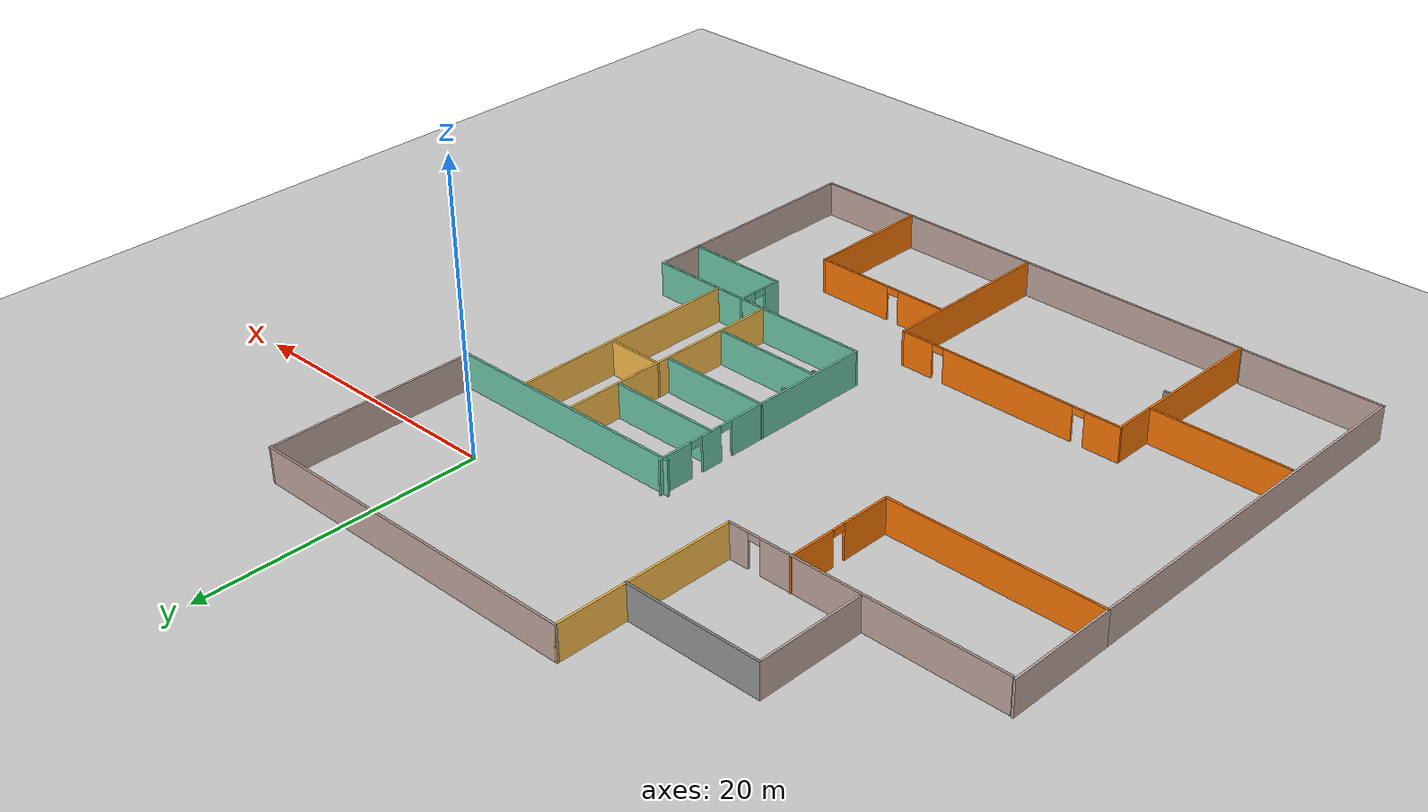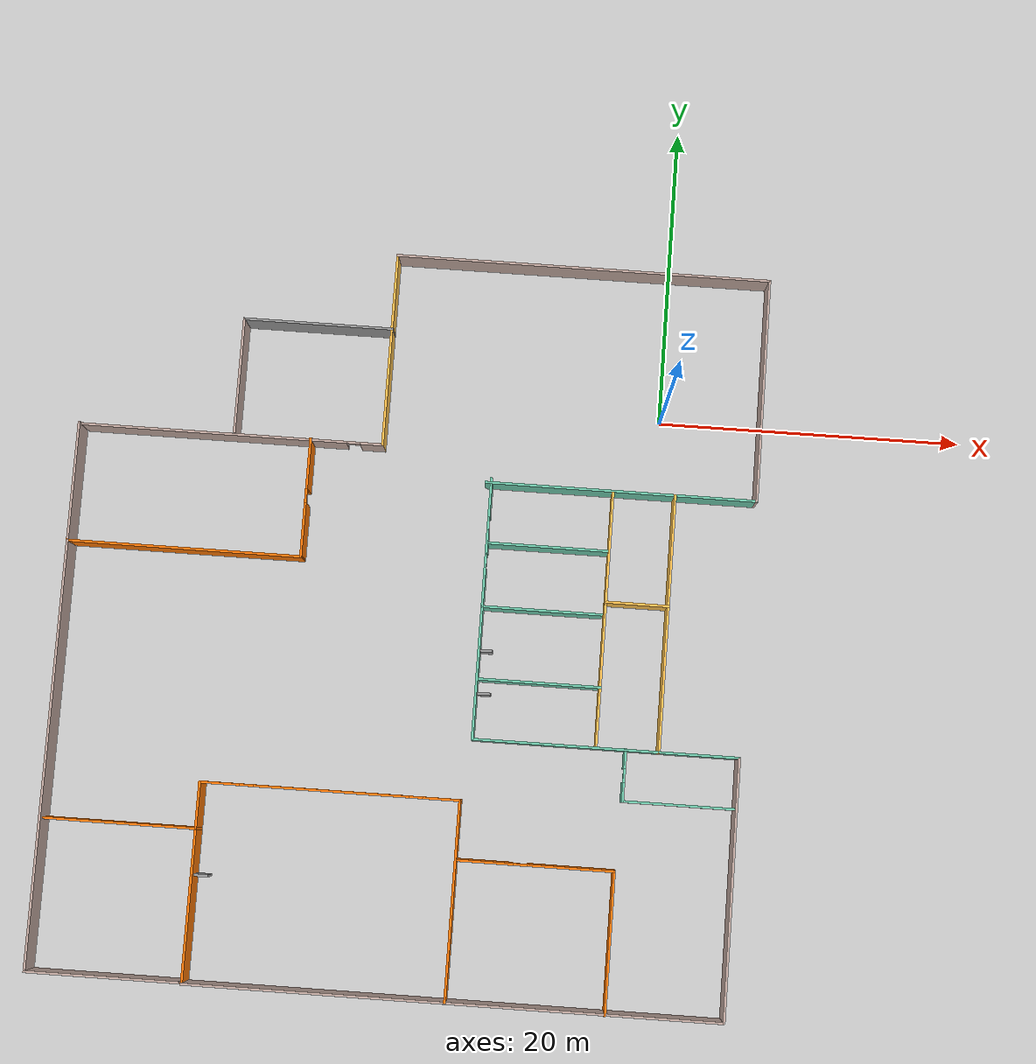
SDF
<sdf version="1.6">
 <world name="default">
  <model name="ground_plane">
   <static>1</static>
   <link name="link">
    <collision name="collision">
     <geometry><plane><normal>0 0 1</normal><size>100 100</size></plane></geometry>
     <surface>
      <contact><collide_bitmask>65535</collide_bitmask></contact>
      <friction><ode><mu>100</mu><mu2>50</mu2></ode></friction>
     </surface>
    </collision>
    <visual name="visual">
     <cast_shadows>0</cast_shadows>
     <geometry><plane><normal>0 0 1</normal><size>100 100</size></plane></geometry>
     <material>
      <script><uri>file://media/materials/scripts/gazebo.material</uri><name>Gazebo/Grey</name></script>
     </material>
    </visual>
   </link>
  </model>
  <model name="newest">
   <pose>-15.9063 -14.6131 0 0 -0 0</pose>
   <link name="Door_4">
    <collision name="Door_4_Collision">
     <geometry><box><size>0.9 0.17 2</size></box></geometry>
     <pose>0 0 1 0 -0 0</pose>
    </collision>
    <visual name="Door_4_Visual">
     <pose>0 0 1 0 -0 0</pose>
     <geometry><box><size>0.9 0.17 2</size></box></geometry>
     <material>
      <script><uri>file://media/materials/scripts/gazebo.material</uri><name>Gazebo/Grey</name></script>
     </material>
    </visual>
    <pose>5.40167 -1.58767 0 0 -0 0</pose>
   </link>
   <link name="Door_5">
    <collision name="Door_5_Collision">
     <geometry><box><size>0.9 0.17 2</size></box></geometry>
     <pose>0 0 1 0 -0 0</pose>
    </collision>
    <visual name="Door_5_Visual">
     <pose>0 0 1 0 -0 0</pose>
     <geometry><box><size>0.9 0.17 2</size></box></geometry>
     <material>
      <script><uri>file://media/materials/scripts/gazebo.material</uri><name>Gazebo/Grey</name></script>
     </material>
    </visual>
    <pose>5.49524 -4.39496 0 0 -0 0</pose>
   </link>
   <link name="Door_7">
    <collision name="Door_7_Collision">
     <geometry><box><size>0.9 0.17 2</size></box></geometry>
     <pose>0 0 1 0 -0 0</pose>
    </collision>
    <visual name="Door_7_Visual">
     <pose>0 0 1 0 -0 0</pose>
     <geometry><box><size>0.9 0.17 2</size></box></geometry>
     <material>
      <script><uri>file://media/materials/scripts/gazebo.material</uri><name>Gazebo/Grey</name></script>
     </material>
    </visual>
    <pose>-11.8428 -17.3645 0 0 -0 0</pose>
   </link>
   <link name="Wall_1">
    <collision name="Wall_1_Collision">
     <geometry><box><size>25 0.15 2.5</size></box></geometry>
     <pose>0 0 1.25 0 -0 0</pose>
    </collision>
    <visual name="Wall_1_Visual">
     <pose>0 0 1.25 0 -0 0</pose>
     <geometry><box><size>25 0.15 2.5</size></box></geometry>
     <material>
      <script><uri>file://media/materials/scripts/gazebo.material</uri><name>Gazebo/Grey</name></script>
      <ambient>0.760784 0.662745 0.627451 1</ambient>
     </material>
     <meta><layer>0</layer></meta>
    </visual>
    <pose>10.0497 24.3037 0 0 -0 0</pose>
   </link>
   <link name="Wall_11">
    <collision name="Wall_11_Collision">
     <geometry><box><size>10 0.15 2.5</size></box></geometry>
     <pose>0 0 1.25 0 -0 0</pose>
    </collision>
    <visual name="Wall_11_Visual">
     <pose>0 0 1.25 0 -0 0</pose>
     <geometry><box><size>10 0.15 2.5</size></box></geometry>
     <material>
      <script><uri>file://media/materials/scripts/gazebo.material</uri><name>Gazebo/Grey</name></script>
      <ambient>1 1 1 1</ambient>
     </material>
     <meta><layer>0</layer></meta>
    </visual>
    <pose>-7.27616 19.2697 0 0 -0 3.14159</pose>
   </link>
   <link name="Wall_13">
    <collision name="Wall_13_Collision">
     <geometry><box><size>7.75 0.15 2.5</size></box></geometry>
     <pose>0 0 1.25 0 -0 0</pose>
    </collision>
    <visual name="Wall_13_Visual">
     <pose>0 0 1.25 0 -0 0</pose>
     <geometry><box><size>7.75 0.15 2.5</size></box></geometry>
     <material>
      <script><uri>file://media/materials/scripts/gazebo.material</uri><name>Gazebo/Grey</name></script>
      <ambient>0.760784 0.662745 0.627451 1</ambient>
     </material>
     <meta><layer>0</layer></meta>
    </visual>
    <pose>-12.2012 15.4697 0 0 0 -1.5708</pose>
   </link>
   <link name="Wall_15">
    <collision name="Wall_15_Collision">
     <geometry><box><size>8 0.15 2.5</size></box></geometry>
     <pose>0 0 1.25 0 -0 0</pose>
    </collision>
    <visual name="Wall_15_Visual">
     <pose>0 0 1.25 0 -0 0</pose>
     <geometry><box><size>8 0.15 2.5</size></box></geometry>
     <material>
      <script><uri>file://media/materials/scripts/gazebo.material</uri><name>Gazebo/Grey</name></script>
      <ambient>0.760784 0.662745 0.627451 1</ambient>
     </material>
     <meta><layer>0</layer></meta>
    </visual>
    <pose>-22.4747 7.59655 0 0 0 -1.5708</pose>
   </link>
   <link name="Wall_17">
    <collision name="Wall_17_Collision">
     <geometry><box><size>15.5 0.15 2.5</size></box></geometry>
     <pose>0 0 1.25 0 -0 0</pose>
    </collision>
    <visual name="Wall_17_Visual">
     <pose>0 0 1.25 0 -0 0</pose>
     <geometry><box><size>15.5 0.15 2.5</size></box></geometry>
     <material>
      <script><uri>file://media/materials/scripts/gazebo.material</uri><name>Gazebo/Grey</name></script>
      <ambient>0.996078 0.47451 0.0196078 1</ambient>
     </material>
     <meta><layer>0</layer></meta>
    </visual>
    <pose>-14.7997 3.67155 0 0 -0 0</pose>
   </link>
   <link name="Wall_18">
    <pose>-7.12473 7.59655 0 0 -0 1.5708</pose>
    <visual name="Wall_18_Visual_0">
     <pose>-2.16447 0 1.25 0 -0 0</pose>
     <geometry><box><size>3.67106 0.15 2.5</size></box></geometry>
     <material>
      <script><uri>file://media/materials/scripts/gazebo.material</uri><name>Gazebo/Grey</name></script>
      <ambient>0.996078 0.47451 0.0196078 1</ambient>
     </material>
     <meta><layer>0</layer></meta>
    </visual>
    <collision name="Wall_18_Collision_0">
     <geometry><box><size>3.67106 0.15 2.5</size></box></geometry>
     <pose>-2.16447 0 1.25 0 -0 0</pose>
    </collision>
    <visual name="Wall_18_Visual_1">
     <pose>2.28553 0 1.25 0 -0 0</pose>
     <geometry><box><size>3.42894 0.15 2.5</size></box></geometry>
     <material>
      <script><uri>file://media/materials/scripts/gazebo.material</uri><name>Gazebo/Grey</name></script>
      <ambient>0.996078 0.47451 0.0196078 1</ambient>
     </material>
     <meta><layer>0</layer></meta>
    </visual>
    <collision name="Wall_18_Collision_1">
     <geometry><box><size>3.42894 0.15 2.5</size></box></geometry>
     <pose>2.28553 0 1.25 0 -0 0</pose>
    </collision>
    <visual name="Wall_18_Visual_2">
     <pose>0.121058 0 2.25 0 -0 0</pose>
     <geometry><box><size>0.9 0.15 0.5</size></box></geometry>
     <material>
      <script><uri>file://media/materials/scripts/gazebo.material</uri><name>Gazebo/Grey</name></script>
      <ambient>0.996078 0.47451 0.0196078 1</ambient>
     </material>
     <meta><layer>0</layer></meta>
    </visual>
    <collision name="Wall_18_Collision_2">
     <geometry><box><size>0.9 0.15 0.5</size></box></geometry>
     <pose>0.121058 0 2.25 0 -0 0</pose>
    </collision>
   </link>
   <link name="Wall_20">
    <collision name="Wall_20_Collision">
     <geometry><box><size>28 0.15 2.5</size></box></geometry>
     <pose>0 0 1.25 0 -0 0</pose>
    </collision>
    <visual name="Wall_20_Visual">
     <pose>0 0 1.25 0 -0 0</pose>
     <geometry><box><size>28 0.15 2.5</size></box></geometry>
     <material>
      <script><uri>file://media/materials/scripts/gazebo.material</uri><name>Gazebo/Grey</name></script>
      <ambient>0.760784 0.662745 0.627451 1</ambient>
     </material>
     <meta><layer>0</layer></meta>
    </visual>
    <pose>-22.4747 -10.2535 0 0 0 -1.5708</pose>
   </link>
   <link name="Wall_22">
    <collision name="Wall_22_Collision">
     <geometry><box><size>10 0.15 2.5</size></box></geometry>
     <pose>0 0 1.25 0 -0 0</pose>
    </collision>
    <visual name="Wall_22_Visual">
     <pose>0 0 1.25 0 -0 0</pose>
     <geometry><box><size>10 0.15 2.5</size></box></geometry>
     <material>
      <script><uri>file://media/materials/scripts/gazebo.material</uri><name>Gazebo/Grey</name></script>
      <ambient>0.760784 0.662745 0.627451 1</ambient>
     </material>
     <meta><layer>0</layer></meta>
    </visual>
    <pose>-17.5497 -24.1785 0 0 -0 0</pose>
   </link>
   <link name="Wall_24">
    <collision name="Wall_24_Collision">
     <geometry><box><size>10 0.15 2.5</size></box></geometry>
     <pose>0 0 1.25 0 -0 0</pose>
    </collision>
    <visual name="Wall_24_Visual">
     <pose>0 0 1.25 0 -0 0</pose>
     <geometry><box><size>10 0.15 2.5</size></box></geometry>
     <material>
      <script><uri>file://media/materials/scripts/gazebo.material</uri><name>Gazebo/Grey</name></script>
      <ambient>0.996078 0.47451 0.0196078 1</ambient>
     </material>
     <meta><layer>0</layer></meta>
    </visual>
    <pose>-12.3763 -19.3183 0 0 -0 1.5708</pose>
   </link>
   <link name="Wall_26">
    <collision name="Wall_26_Collision">
     <geometry><box><size>10 0.15 2.5</size></box></geometry>
     <pose>0 0 1.25 0 -0 0</pose>
    </collision>
    <visual name="Wall_26_Visual">
     <pose>0 0 1.25 0 -0 0</pose>
     <geometry><box><size>10 0.15 2.5</size></box></geometry>
     <material>
      <script><uri>file://media/materials/scripts/gazebo.material</uri><name>Gazebo/Grey</name></script>
      <ambient>0.996078 0.47451 0.0196078 1</ambient>
     </material>
     <meta><layer>0</layer></meta>
    </visual>
    <pose>-17.3013 -14.3933 0 0 -0 3.14159</pose>
   </link>
   <link name="Wall_28">
    <collision name="Wall_28_Collision">
     <geometry><box><size>17 0.15 2.5</size></box></geometry>
     <pose>0 0 1.25 0 -0 0</pose>
    </collision>
    <visual name="Wall_28_Visual">
     <pose>0 0 1.25 0 -0 0</pose>
     <geometry><box><size>17 0.15 2.5</size></box></geometry>
     <material>
      <script><uri>file://media/materials/scripts/gazebo.material</uri><name>Gazebo/Grey</name></script>
      <ambient>0.760784 0.662745 0.627451 1</ambient>
     </material>
     <meta><layer>0</layer></meta>
    </visual>
    <pose>-3.95132 -24.2434 0 0 -0 0</pose>
   </link>
   <link name="Wall_3">
    <collision name="Wall_3_Collision">
     <geometry><box><size>15 0.15 2.5</size></box></geometry>
     <pose>0 0 1.25 0 -0 0</pose>
    </collision>
    <visual name="Wall_3_Visual">
     <pose>0 0 1.25 0 -0 0</pose>
     <geometry><box><size>15 0.15 2.5</size></box></geometry>
     <material>
      <script><uri>file://media/materials/scripts/gazebo.material</uri><name>Gazebo/Grey</name></script>
      <ambient>0.760784 0.662745 0.627451 1</ambient>
     </material>
     <meta><layer>0</layer></meta>
    </visual>
    <pose>22.4745 16.8789 0 0 0 -1.57082</pose>
   </link>
   <link name="Wall_30">
    <collision name="Wall_30_Collision">
     <geometry><box><size>13 0.15 2.5</size></box></geometry>
     <pose>0 0 1.25 0 -0 0</pose>
    </collision>
    <visual name="Wall_30_Visual">
     <pose>0 0 1.25 0 -0 0</pose>
     <geometry><box><size>13 0.15 2.5</size></box></geometry>
     <material>
      <script><uri>file://media/materials/scripts/gazebo.material</uri><name>Gazebo/Grey</name></script>
      <ambient>0.996078 0.47451 0.0196078 1</ambient>
     </material>
     <meta><layer>0</layer></meta>
    </visual>
    <pose>4.47368 -17.8183 0 0 -0 1.5708</pose>
   </link>
   <link name="Wall_31">
    <pose>-3.95132 -11.3933 0 0 -0 3.14159</pose>
    <visual name="Wall_31_Visual_0">
     <pose>-7.25826 0 1.25 0 -0 0</pose>
     <geometry><box><size>2.48348 0.15 2.5</size></box></geometry>
     <material>
      <script><uri>file://media/materials/scripts/gazebo.material</uri><name>Gazebo/Grey</name></script>
      <ambient>0.996078 0.47451 0.0196078 1</ambient>
     </material>
     <meta><layer>0</layer></meta>
    </visual>
    <collision name="Wall_31_Collision_0">
     <geometry><box><size>2.48348 0.15 2.5</size></box></geometry>
     <pose>-7.25826 0 1.25 0 -0 0</pose>
    </collision>
    <visual name="Wall_31_Visual_1">
     <pose>-0.083725 0 1.25 0 -0 0</pose>
     <geometry><box><size>10.0656 0.15 2.5</size></box></geometry>
     <material>
      <script><uri>file://media/materials/scripts/gazebo.material</uri><name>Gazebo/Grey</name></script>
      <ambient>0.996078 0.47451 0.0196078 1</ambient>
     </material>
     <meta><layer>0</layer></meta>
    </visual>
    <collision name="Wall_31_Collision_1">
     <geometry><box><size>10.0656 0.15 2.5</size></box></geometry>
     <pose>-0.083725 0 1.25 0 -0 0</pose>
    </collision>
    <visual name="Wall_31_Visual_2">
     <pose>7.17453 0 1.25 0 -0 0</pose>
     <geometry><box><size>2.65094 0.15 2.5</size></box></geometry>
     <material>
      <script><uri>file://media/materials/scripts/gazebo.material</uri><name>Gazebo/Grey</name></script>
      <ambient>0.996078 0.47451 0.0196078 1</ambient>
     </material>
     <meta><layer>0</layer></meta>
    </visual>
    <collision name="Wall_31_Collision_2">
     <geometry><box><size>2.65094 0.15 2.5</size></box></geometry>
     <pose>7.17453 0 1.25 0 -0 0</pose>
    </collision>
    <visual name="Wall_31_Visual_3">
     <pose>-5.56652 0 2.25 0 -0 0</pose>
     <geometry><box><size>0.9 0.15 0.5</size></box></geometry>
     <material>
      <script><uri>file://media/materials/scripts/gazebo.material</uri><name>Gazebo/Grey</name></script>
      <ambient>0.996078 0.47451 0.0196078 1</ambient>
     </material>
     <meta><layer>0</layer></meta>
    </visual>
    <collision name="Wall_31_Collision_3">
     <geometry><box><size>0.9 0.15 0.5</size></box></geometry>
     <pose>-5.56652 0 2.25 0 -0 0</pose>
    </collision>
    <visual name="Wall_31_Visual_4">
     <pose>5.39907 0 2.25 0 -0 0</pose>
     <geometry><box><size>0.9 0.15 0.5</size></box></geometry>
     <material>
      <script><uri>file://media/materials/scripts/gazebo.material</uri><name>Gazebo/Grey</name></script>
      <ambient>0.996078 0.47451 0.0196078 1</ambient>
     </material>
     <meta><layer>0</layer></meta>
    </visual>
    <collision name="Wall_31_Collision_4">
     <geometry><box><size>0.9 0.15 0.5</size></box></geometry>
     <pose>5.39907 0 2.25 0 -0 0</pose>
    </collision>
   </link>
   <link name="Wall_32">
    <collision name="Wall_32_Collision">
     <geometry><box><size>3.15 0.15 2.5</size></box></geometry>
     <pose>0 0 1.25 0 -0 0</pose>
    </collision>
    <visual name="Wall_32_Visual">
     <pose>0 0 1.25 0 -0 0</pose>
     <geometry><box><size>3.15 0.15 2.5</size></box></geometry>
     <material>
      <script><uri>file://media/materials/scripts/gazebo.material</uri><name>Gazebo/Grey</name></script>
      <ambient>0.996078 0.47451 0.0196078 1</ambient>
     </material>
     <meta><layer>0</layer></meta>
    </visual>
    <pose>-12.3763 -12.8933 0 0 0 -1.5708</pose>
   </link>
   <link name="Wall_34">
    <collision name="Wall_34_Collision">
     <geometry><box><size>18 0.15 2.5</size></box></geometry>
     <pose>0 0 1.25 0 -0 0</pose>
    </collision>
    <visual name="Wall_34_Visual">
     <pose>0 0 1.25 0 -0 0</pose>
     <geometry><box><size>18 0.15 2.5</size></box></geometry>
     <material>
      <script><uri>file://media/materials/scripts/gazebo.material</uri><name>Gazebo/Grey</name></script>
      <ambient>0.760784 0.662745 0.627451 1</ambient>
     </material>
     <meta><layer>0</layer></meta>
    </visual>
    <pose>13.3987 -24.2434 0 0 -0 0</pose>
   </link>
   <link name="Wall_35">
    <collision name="Wall_35_Collision">
     <geometry><box><size>17 0.15 2.5</size></box></geometry>
     <pose>0 0 1.25 0 -0 0</pose>
    </collision>
    <visual name="Wall_35_Visual">
     <pose>0 0 1.25 0 -0 0</pose>
     <geometry><box><size>17 0.15 2.5</size></box></geometry>
     <material>
      <script><uri>file://media/materials/scripts/gazebo.material</uri><name>Gazebo/Grey</name></script>
      <ambient>0.760784 0.662745 0.627451 1</ambient>
     </material>
     <meta><layer>0</layer></meta>
    </visual>
    <pose>22.3237 -15.8184 0 0 -0 1.5708</pose>
   </link>
   <link name="Wall_36">
    <collision name="Wall_36_Collision">
     <geometry><box><size>17.5 0.15 2.5</size></box></geometry>
     <pose>0 0 1.25 0 -0 0</pose>
    </collision>
    <visual name="Wall_36_Visual">
     <pose>0 0 1.25 0 -0 0</pose>
     <geometry><box><size>17.5 0.15 2.5</size></box></geometry>
     <material>
      <script><uri>file://media/materials/scripts/gazebo.material</uri><name>Gazebo/Grey</name></script>
      <ambient>0.435294 0.796078 0.67451 1</ambient>
     </material>
     <meta><layer>0</layer></meta>
    </visual>
    <pose>13.6487 -7.39335 0 0 -0 3.14159</pose>
   </link>
   <link name="Wall_37">
    <pose>4.97368 1.15665 0 0 -0 1.5708</pose>
    <visual name="Wall_37_Visual_0">
     <pose>-2.97883 0 1.25 0 -0 0</pose>
     <geometry><box><size>11.2924 0.15 2.5</size></box></geometry>
     <material>
      <script><uri>file://media/materials/scripts/gazebo.material</uri><name>Gazebo/Grey</name></script>
      <ambient>0.435294 0.796078 0.67451 1</ambient>
     </material>
     <meta><layer>0</layer></meta>
    </visual>
    <collision name="Wall_37_Collision_0">
     <geometry><box><size>11.2924 0.15 2.5</size></box></geometry>
     <pose>-2.97883 0 1.25 0 -0 0</pose>
    </collision>
    <visual name="Wall_37_Visual_1">
     <pose>4.35489 0 1.25 0 -0 0</pose>
     <geometry><box><size>1.57509 0.15 2.5</size></box></geometry>
     <material>
      <script><uri>file://media/materials/scripts/gazebo.material</uri><name>Gazebo/Grey</name></script>
      <ambient>0.435294 0.796078 0.67451 1</ambient>
     </material>
     <meta><layer>0</layer></meta>
    </visual>
    <collision name="Wall_37_Collision_1">
     <geometry><box><size>1.57509 0.15 2.5</size></box></geometry>
     <pose>4.35489 0 1.25 0 -0 0</pose>
    </collision>
    <visual name="Wall_37_Visual_2">
     <pose>7.33372 0 1.25 0 -0 0</pose>
     <geometry><box><size>2.58256 0.15 2.5</size></box></geometry>
     <material>
      <script><uri>file://media/materials/scripts/gazebo.material</uri><name>Gazebo/Grey</name></script>
      <ambient>0.435294 0.796078 0.67451 1</ambient>
     </material>
     <meta><layer>0</layer></meta>
    </visual>
    <collision name="Wall_37_Collision_2">
     <geometry><box><size>2.58256 0.15 2.5</size></box></geometry>
     <pose>7.33372 0 1.25 0 -0 0</pose>
    </collision>
    <visual name="Wall_37_Visual_3">
     <pose>3.11735 0 2.25 0 -0 0</pose>
     <geometry><box><size>0.9 0.15 0.5</size></box></geometry>
     <material>
      <script><uri>file://media/materials/scripts/gazebo.material</uri><name>Gazebo/Grey</name></script>
      <ambient>0.435294 0.796078 0.67451 1</ambient>
     </material>
     <meta><layer>0</layer></meta>
    </visual>
    <collision name="Wall_37_Collision_3">
     <geometry><box><size>0.9 0.15 0.5</size></box></geometry>
     <pose>3.11735 0 2.25 0 -0 0</pose>
    </collision>
    <visual name="Wall_37_Visual_4">
     <pose>5.59244 0 2.25 0 -0 0</pose>
     <geometry><box><size>0.9 0.15 0.5</size></box></geometry>
     <material>
      <script><uri>file://media/materials/scripts/gazebo.material</uri><name>Gazebo/Grey</name></script>
      <ambient>0.435294 0.796078 0.67451 1</ambient>
     </material>
     <meta><layer>0</layer></meta>
    </visual>
    <collision name="Wall_37_Collision_4">
     <geometry><box><size>0.9 0.15 0.5</size></box></geometry>
     <pose>5.59244 0 2.25 0 -0 0</pose>
    </collision>
   </link>
   <link name="Wall_39">
    <pose>9.67648 -15.2039 0 0 -0 0</pose>
    <visual name="Wall_39_Visual_0">
     <pose>-3.29934 0 1.25 0 -0 0</pose>
     <geometry><box><size>3.65133 0.15 2.5</size></box></geometry>
     <material>
      <script><uri>file://media/materials/scripts/gazebo.material</uri><name>Gazebo/Grey</name></script>
      <ambient>0.996078 0.47451 0.0196078 1</ambient>
     </material>
     <meta><layer>0</layer></meta>
    </visual>
    <collision name="Wall_39_Collision_0">
     <geometry><box><size>3.65133 0.15 2.5</size></box></geometry>
     <pose>-3.29934 0 1.25 0 -0 0</pose>
    </collision>
    <visual name="Wall_39_Visual_1">
     <pose>2.27567 0 1.25 0 -0 0</pose>
     <geometry><box><size>5.69867 0.15 2.5</size></box></geometry>
     <material>
      <script><uri>file://media/materials/scripts/gazebo.material</uri><name>Gazebo/Grey</name></script>
      <ambient>0.996078 0.47451 0.0196078 1</ambient>
     </material>
     <meta><layer>0</layer></meta>
    </visual>
    <collision name="Wall_39_Collision_1">
     <geometry><box><size>5.69867 0.15 2.5</size></box></geometry>
     <pose>2.27567 0 1.25 0 -0 0</pose>
    </collision>
    <visual name="Wall_39_Visual_2">
     <pose>-1.02367 0 2.25 0 -0 0</pose>
     <geometry><box><size>0.9 0.15 0.5</size></box></geometry>
     <material>
      <script><uri>file://media/materials/scripts/gazebo.material</uri><name>Gazebo/Grey</name></script>
      <ambient>0.996078 0.47451 0.0196078 1</ambient>
     </material>
     <meta><layer>0</layer></meta>
    </visual>
    <collision name="Wall_39_Collision_2">
     <geometry><box><size>0.9 0.15 0.5</size></box></geometry>
     <pose>-1.02367 0 2.25 0 -0 0</pose>
    </collision>
   </link>
   <link name="Wall_40">
    <collision name="Wall_40_Collision">
     <geometry><box><size>9.25 0.15 2.5</size></box></geometry>
     <pose>0 0 1.25 0 -0 0</pose>
    </collision>
    <visual name="Wall_40_Visual">
     <pose>0 0 1.25 0 -0 0</pose>
     <geometry><box><size>9.25 0.15 2.5</size></box></geometry>
     <material>
      <script><uri>file://media/materials/scripts/gazebo.material</uri><name>Gazebo/Grey</name></script>
      <ambient>0.996078 0.47451 0.0196078 1</ambient>
     </material>
     <meta><layer>0</layer></meta>
    </visual>
    <pose>14.7265 -19.7539 0 0 0 -1.5708</pose>
   </link>
   <link name="Wall_42">
    <collision name="Wall_42_Collision">
     <geometry><box><size>17 0.15 2.5</size></box></geometry>
     <pose>0 0 1.25 0 -0 0</pose>
    </collision>
    <visual name="Wall_42_Visual">
     <pose>0 0 1.25 0 -0 0</pose>
     <geometry><box><size>17 0.15 2.5</size></box></geometry>
     <material>
      <script><uri>file://media/materials/scripts/gazebo.material</uri><name>Gazebo/Grey</name></script>
      <ambient>1 0.764706 0.305882 1</ambient>
     </material>
     <meta><layer>0</layer></meta>
    </visual>
    <pose>17.1095 1.01441 0 0 0 -1.5708</pose>
   </link>
   <link name="Wall_44">
    <collision name="Wall_44_Collision">
     <geometry><box><size>16.75 0.15 2.5</size></box></geometry>
     <pose>0 0 1.25 0 -0 0</pose>
    </collision>
    <visual name="Wall_44_Visual">
     <pose>0 0 1.25 0 -0 0</pose>
     <geometry><box><size>16.75 0.15 2.5</size></box></geometry>
     <material>
      <script><uri>file://media/materials/scripts/gazebo.material</uri><name>Gazebo/Grey</name></script>
      <ambient>1 0.764706 0.305882 1</ambient>
     </material>
     <meta><layer>0</layer></meta>
    </visual>
    <pose>13.0203 1.0318 0 0 0 -1.5708</pose>
   </link>
   <link name="Wall_46">
    <collision name="Wall_46_Collision">
     <geometry><box><size>8 0.15 2.5</size></box></geometry>
     <pose>0 0 1.25 0 -0 0</pose>
    </collision>
    <visual name="Wall_46_Visual">
     <pose>0 0 1.25 0 -0 0</pose>
     <geometry><box><size>8 0.15 2.5</size></box></geometry>
     <material>
      <script><uri>file://media/materials/scripts/gazebo.material</uri><name>Gazebo/Grey</name></script>
      <ambient>0.435294 0.796078 0.67451 1</ambient>
     </material>
     <meta><layer>0</layer></meta>
    </visual>
    <pose>8.98193 5.45774 0 0 -0 0</pose>
   </link>
   <link name="Wall_48">
    <collision name="Wall_48_Collision">
     <geometry><box><size>8 0.15 2.5</size></box></geometry>
     <pose>0 0 1.25 0 -0 0</pose>
    </collision>
    <visual name="Wall_48_Visual">
     <pose>0 0 1.25 0 -0 0</pose>
     <geometry><box><size>8 0.15 2.5</size></box></geometry>
     <material>
      <script><uri>file://media/materials/scripts/gazebo.material</uri><name>Gazebo/Grey</name></script>
      <ambient>0.435294 0.796078 0.67451 1</ambient>
     </material>
     <meta><layer>0</layer></meta>
    </visual>
    <pose>8.87432 1.26085 0 0 -0 0</pose>
   </link>
   <link name="Wall_5">
    <collision name="Wall_5_Collision">
     <geometry><box><size>18 0.15 2.5</size></box></geometry>
     <pose>0 0 1.25 0 -0 0</pose>
    </collision>
    <visual name="Wall_5_Visual">
     <pose>0 0 1.25 0 -0 0</pose>
     <geometry><box><size>18 0.15 2.5</size></box></geometry>
     <material>
      <script><uri>file://media/materials/scripts/gazebo.material</uri><name>Gazebo/Grey</name></script>
      <ambient>0.435294 0.796078 0.67451 1</ambient>
     </material>
     <meta><layer>0</layer></meta>
    </visual>
    <pose>13.5493 9.45408 0 0 -0 3.14159</pose>
   </link>
   <link name="Wall_50">
    <collision name="Wall_50_Collision">
     <geometry><box><size>8 0.15 2.5</size></box></geometry>
     <pose>0 0 1.25 0 -0 0</pose>
    </collision>
    <visual name="Wall_50_Visual">
     <pose>0 0 1.25 0 -0 0</pose>
     <geometry><box><size>8 0.15 2.5</size></box></geometry>
     <material>
      <script><uri>file://media/materials/scripts/gazebo.material</uri><name>Gazebo/Grey</name></script>
      <ambient>0.435294 0.796078 0.67451 1</ambient>
     </material>
     <meta><layer>0</layer></meta>
    </visual>
    <pose>9.08954 -3.47411 0 0 -0 0</pose>
   </link>
   <link name="Wall_52">
    <collision name="Wall_52_Collision">
     <geometry><box><size>4.25 0.15 2.5</size></box></geometry>
     <pose>0 0 1.25 0 -0 0</pose>
    </collision>
    <visual name="Wall_52_Visual">
     <pose>0 0 1.25 0 -0 0</pose>
     <geometry><box><size>4.25 0.15 2.5</size></box></geometry>
     <material>
      <script><uri>file://media/materials/scripts/gazebo.material</uri><name>Gazebo/Grey</name></script>
      <ambient>1 0.764706 0.305882 1</ambient>
     </material>
     <meta><layer>0</layer></meta>
    </visual>
    <pose>15.0703 2.12175 0 0 -0 0</pose>
   </link>
   <link name="Wall_54">
    <pose>14.9573 -9.02317 0 0 0 -1.5708</pose>
    <visual name="Wall_54_Visual_0">
     <pose>-1.09496 0 1.25 0 -0 0</pose>
     <geometry><box><size>1.31008 0.15 2.5</size></box></geometry>
     <material>
      <script><uri>file://media/materials/scripts/gazebo.material</uri><name>Gazebo/Grey</name></script>
      <ambient>0.435294 0.796078 0.67451 1</ambient>
     </material>
     <meta><layer>0</layer></meta>
    </visual>
    <collision name="Wall_54_Collision_0">
     <geometry><box><size>1.31008 0.15 2.5</size></box></geometry>
     <pose>-1.09496 0 1.25 0 -0 0</pose>
    </collision>
    <visual name="Wall_54_Visual_1">
     <pose>1.10504 0 1.25 0 -0 0</pose>
     <geometry><box><size>1.28992 0.15 2.5</size></box></geometry>
     <material>
      <script><uri>file://media/materials/scripts/gazebo.material</uri><name>Gazebo/Grey</name></script>
      <ambient>0.435294 0.796078 0.67451 1</ambient>
     </material>
     <meta><layer>0</layer></meta>
    </visual>
    <collision name="Wall_54_Collision_1">
     <geometry><box><size>1.28992 0.15 2.5</size></box></geometry>
     <pose>1.10504 0 1.25 0 -0 0</pose>
    </collision>
    <visual name="Wall_54_Visual_2">
     <pose>0.010077 0 2.25 0 -0 0</pose>
     <geometry><box><size>0.9 0.15 0.5</size></box></geometry>
     <material>
      <script><uri>file://media/materials/scripts/gazebo.material</uri><name>Gazebo/Grey</name></script>
      <ambient>0.435294 0.796078 0.67451 1</ambient>
     </material>
     <meta><layer>0</layer></meta>
    </visual>
    <collision name="Wall_54_Collision_2">
     <geometry><box><size>0.9 0.15 0.5</size></box></geometry>
     <pose>0.010077 0 2.25 0 -0 0</pose>
    </collision>
   </link>
   <link name="Wall_55">
    <collision name="Wall_55_Collision">
     <geometry><box><size>7.5 0.15 2.5</size></box></geometry>
     <pose>0 0 1.25 0 -0 0</pose>
    </collision>
    <visual name="Wall_55_Visual">
     <pose>0 0 1.25 0 -0 0</pose>
     <geometry><box><size>7.5 0.15 2.5</size></box></geometry>
     <material>
      <script><uri>file://media/materials/scripts/gazebo.material</uri><name>Gazebo/Grey</name></script>
      <ambient>0.435294 0.796078 0.67451 1</ambient>
     </material>
     <meta><layer>0</layer></meta>
    </visual>
    <pose>18.6323 -10.6982 0 0 -0 0</pose>
   </link>
   <link name="Wall_7">
    <collision name="Wall_7_Collision">
     <geometry><box><size>13 0.15 2.5</size></box></geometry>
     <pose>0 0 1.25 0 -0 0</pose>
    </collision>
    <visual name="Wall_7_Visual">
     <pose>0 0 1.25 0 -0 0</pose>
     <geometry><box><size>13 0.15 2.5</size></box></geometry>
     <material>
      <script><uri>file://media/materials/scripts/gazebo.material</uri><name>Gazebo/Grey</name></script>
      <ambient>1 0.764706 0.305882 1</ambient>
     </material>
     <meta><layer>0</layer></meta>
    </visual>
    <pose>-2.37527 17.8787 0 0 0 -1.5708</pose>
   </link>
   <link name="Wall_9">
    <pose>-12.3003 11.4537 0 0 -0 3.14159</pose>
    <visual name="Wall_9_Visual_0">
     <pose>-9.22245 0 1.25 0 -0 0</pose>
     <geometry><box><size>1.55509 0.15 2.5</size></box></geometry>
     <material>
      <script><uri>file://media/materials/scripts/gazebo.material</uri><name>Gazebo/Grey</name></script>
      <ambient>0.760784 0.662745 0.627451 1</ambient>
     </material>
     <meta><layer>0</layer></meta>
    </visual>
    <collision name="Wall_9_Collision_0">
     <geometry><box><size>1.55509 0.15 2.5</size></box></geometry>
     <pose>-9.22245 0 1.25 0 -0 0</pose>
    </collision>
    <visual name="Wall_9_Visual_1">
     <pose>1.22755 0 1.25 0 -0 0</pose>
     <geometry><box><size>17.5449 0.15 2.5</size></box></geometry>
     <material>
      <script><uri>file://media/materials/scripts/gazebo.material</uri><name>Gazebo/Grey</name></script>
      <ambient>0.760784 0.662745 0.627451 1</ambient>
     </material>
     <meta><layer>0</layer></meta>
    </visual>
    <collision name="Wall_9_Collision_1">
     <geometry><box><size>17.5449 0.15 2.5</size></box></geometry>
     <pose>1.22755 0 1.25 0 -0 0</pose>
    </collision>
    <visual name="Wall_9_Visual_2">
     <pose>-7.99491 0 2.25 0 -0 0</pose>
     <geometry><box><size>0.9 0.15 0.5</size></box></geometry>
     <material>
      <script><uri>file://media/materials/scripts/gazebo.material</uri><name>Gazebo/Grey</name></script>
      <ambient>0.760784 0.662745 0.627451 1</ambient>
     </material>
     <meta><layer>0</layer></meta>
    </visual>
    <collision name="Wall_9_Collision_2">
     <geometry><box><size>0.9 0.15 0.5</size></box></geometry>
     <pose>-7.99491 0 2.25 0 -0 0</pose>
    </collision>
   </link>
   <static>1</static>
  </model>
 </world>
</sdf>
